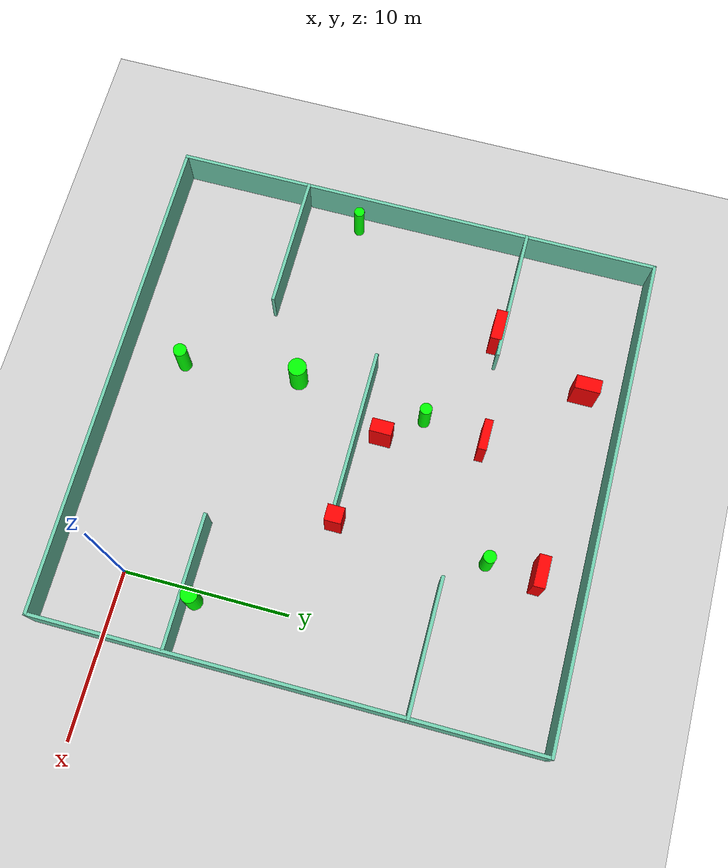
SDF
<sdf version="1.7">
 <world name="default">
  <light name="sun" type="directional">
   <pose>0 0 10 0 -0 0</pose>
   <diffuse>0.8 0.8 0.8 1</diffuse>
   <specular>0.2 0.2 0.2 1</specular>
   <attenuation>
    <range>1000</range>
    <constant>0.9</constant>
    <linear>0.01</linear>
    <quadratic>0.001</quadratic>
   </attenuation>
   <direction>-0.5 0.1 -0.9</direction>
   <spot><inner_angle>0</inner_angle><outer_angle>0</outer_angle><falloff>0</falloff></spot>
  </light>
  <model name="ground_plane">
   <static>1</static>
   <link name="link">
    <collision name="collision">
     <geometry><plane><normal>0 0 1</normal><size>100 100</size></plane></geometry>
     <surface>
      <contact><collide_bitmask>65535</collide_bitmask></contact>
      <friction><ode><mu>100</mu><mu2>50</mu2></ode></friction>
     </surface>
    </collision>
    <visual name="visual">
     <cast_shadows>0</cast_shadows>
     <geometry><plane><normal>0 0 1</normal><size>100 100</size></plane></geometry>
     <material>
      <script><uri>file://media/materials/scripts/gazebo.material</uri><name>Gazebo/Grey</name></script>
     </material>
    </visual>
   </link>
  </model>
  <gravity>0 0 -9.8</gravity>
  <magnetic_field>6e-06 2.3e-05 -4.2e-05</magnetic_field>
  <atmosphere type="adiabatic"/>
  <physics type="ode">
   <max_step_size>0.001</max_step_size>
   <real_time_factor>1</real_time_factor>
   <real_time_update_rate>1000</real_time_update_rate>
  </physics>
  <scene><ambient>0.4 0.4 0.4 1</ambient><background>0.7 0.7 0.7 1</background><shadows>1</shadows></scene>
  <spherical_coordinates>
   <surface_model>EARTH_WGS84</surface_model>
   <latitude_deg>0</latitude_deg>
   <longitude_deg>0</longitude_deg>
   <elevation>0</elevation>
   <heading_deg>0</heading_deg>
  </spherical_coordinates>
  <model name="my_base_walls">
   <link name="Wall_10">
    <collision name="Wall_10_Collision">
     <geometry><box><size>8.2 0.2 2.5</size></box></geometry>
     <pose>0 0 1.25 0 -0 0</pose>
    </collision>
    <visual name="Wall_10_Visual">
     <pose>0 0 1.25 0 -0 0</pose>
     <geometry><box><size>8.2 0.2 2.5</size></box></geometry>
     <material>
      <script><uri>file://media/materials/scripts/gazebo.material</uri><name>Gazebo/Grey</name></script>
      <ambient>0.435294 0.796078 0.67451 1</ambient>
     </material>
     <meta><layer>0</layer></meta>
    </visual>
    <pose>-11 -7 0 0 -0 0</pose>
   </link>
   <link name="Wall_12">
    <collision name="Wall_12_Collision">
     <geometry><box><size>8.2 0.2 2.5</size></box></geometry>
     <pose>0 0 1.25 0 -0 0</pose>
    </collision>
    <visual name="Wall_12_Visual">
     <pose>0 0 1.25 0 -0 0</pose>
     <geometry><box><size>8.2 0.2 2.5</size></box></geometry>
     <material>
      <script><uri>file://media/materials/scripts/gazebo.material</uri><name>Gazebo/Grey</name></script>
      <ambient>0.435294 0.796078 0.67451 1</ambient>
     </material>
     <meta><layer>0</layer></meta>
    </visual>
    <pose>-11 7 0 0 -0 0</pose>
   </link>
   <link name="Wall_14">
    <collision name="Wall_14_Collision">
     <geometry><box><size>8.2 0.2 2.5</size></box></geometry>
     <pose>0 0 1.25 0 -0 0</pose>
    </collision>
    <visual name="Wall_14_Visual">
     <pose>0 0 1.25 0 -0 0</pose>
     <geometry><box><size>8.2 0.2 2.5</size></box></geometry>
     <material>
      <script><uri>file://media/materials/scripts/gazebo.material</uri><name>Gazebo/Grey</name></script>
      <ambient>0.435294 0.796078 0.67451 1</ambient>
     </material>
     <meta><layer>0</layer></meta>
    </visual>
    <pose>11 7 0 0 -0 3.14159</pose>
   </link>
   <link name="Wall_16">
    <collision name="Wall_16_Collision">
     <geometry><box><size>10.2 0.2 2.5</size></box></geometry>
     <pose>0 0 1.25 0 -0 0</pose>
    </collision>
    <visual name="Wall_16_Visual">
     <pose>0 0 1.25 0 -0 0</pose>
     <geometry><box><size>10.2 0.2 2.5</size></box></geometry>
     <material>
      <script><uri>file://media/materials/scripts/gazebo.material</uri><name>Gazebo/Grey</name></script>
      <ambient>0.435294 0.796078 0.67451 1</ambient>
     </material>
     <meta><layer>0</layer></meta>
    </visual>
    <pose>0 0 0 0 -0 3.14159</pose>
   </link>
   <link name="Wall_2">
    <collision name="Wall_2_Collision">
     <geometry><box><size>30.2 0.2 2.5</size></box></geometry>
     <pose>0 0 1.25 0 -0 0</pose>
    </collision>
    <visual name="Wall_2_Visual">
     <pose>0 0 1.25 0 -0 0</pose>
     <geometry><box><size>30.2 0.2 2.5</size></box></geometry>
     <material>
      <script><uri>file://media/materials/scripts/gazebo.material</uri><name>Gazebo/Grey</name></script>
      <ambient>0.435294 0.796078 0.67451 1</ambient>
     </material>
     <meta><layer>0</layer></meta>
    </visual>
    <pose>0 -15 0 0 -0 3.14159</pose>
   </link>
   <link name="Wall_3">
    <collision name="Wall_3_Collision">
     <geometry><box><size>30.2 0.2 2.5</size></box></geometry>
     <pose>0 0 1.25 0 -0 0</pose>
    </collision>
    <visual name="Wall_3_Visual">
     <pose>0 0 1.25 0 -0 0</pose>
     <geometry><box><size>30.2 0.2 2.5</size></box></geometry>
     <material>
      <script><uri>file://media/materials/scripts/gazebo.material</uri><name>Gazebo/Grey</name></script>
      <ambient>0.435294 0.796078 0.67451 1</ambient>
     </material>
     <meta><layer>0</layer></meta>
    </visual>
    <pose>-15 0 0 0 -0 1.5708</pose>
   </link>
   <link name="Wall_4">
    <collision name="Wall_4_Collision">
     <geometry><box><size>30.2 0.2 2.5</size></box></geometry>
     <pose>0 0 1.25 0 -0 0</pose>
    </collision>
    <visual name="Wall_4_Visual">
     <pose>0 0 1.25 0 -0 0</pose>
     <geometry><box><size>30.2 0.2 2.5</size></box></geometry>
     <material>
      <script><uri>file://media/materials/scripts/gazebo.material</uri><name>Gazebo/Grey</name></script>
      <ambient>0.435294 0.796078 0.67451 1</ambient>
     </material>
     <meta><layer>0</layer></meta>
    </visual>
    <pose>0 15 0 0 -0 0</pose>
   </link>
   <link name="Wall_6">
    <collision name="Wall_6_Collision">
     <geometry><box><size>30.2 0.2 2.5</size></box></geometry>
     <pose>0 0 1.25 0 -0 0</pose>
    </collision>
    <visual name="Wall_6_Visual">
     <pose>0 0 1.25 0 -0 0</pose>
     <geometry><box><size>30.2 0.2 2.5</size></box></geometry>
     <material>
      <script><uri>file://media/materials/scripts/gazebo.material</uri><name>Gazebo/Grey</name></script>
      <ambient>0.435294 0.796078 0.67451 1</ambient>
     </material>
     <meta><layer>0</layer></meta>
    </visual>
    <pose>15 0 0 0 -0 1.5708</pose>
   </link>
   <link name="Wall_8">
    <collision name="Wall_8_Collision">
     <geometry><box><size>8.2 0.2 2.5</size></box></geometry>
     <pose>0 0 1.25 0 -0 0</pose>
    </collision>
    <visual name="Wall_8_Visual">
     <pose>0 0 1.25 0 -0 0</pose>
     <geometry><box><size>8.2 0.2 2.5</size></box></geometry>
     <material>
      <script><uri>file://media/materials/scripts/gazebo.material</uri><name>Gazebo/Grey</name></script>
      <ambient>0.435294 0.796078 0.67451 1</ambient>
     </material>
     <meta><layer>0</layer></meta>
    </visual>
    <pose>11 -7 0 0 -0 3.14159</pose>
   </link>
   <static>1</static>
   <pose>-11 11 0 0 -0 0</pose>
  </model>
  <model name="cylinder1">
   <static>1</static>
   <link name="link">
    <inertial>
     <mass>1</mass>
     <inertia><ixx>0.5</ixx><ixy>0</ixy><ixz>0</ixz><iyy>0.5</iyy><iyz>0</iyz><izz>1</izz></inertia>
    </inertial>
    <collision name="collision">
     <geometry><cylinder><radius>0.40797759821460516</radius><length>2.5</length></cylinder></geometry>
    </collision>
    <visual name="visual">
     <geometry><cylinder><radius>0.40797759821460516</radius><length>2.5</length></cylinder></geometry>
     <material>
      <ambient>0 1 0 1</ambient>
      <diffuse>0 1 0 1</diffuse>
      <specular>0.1 0.1 0.1 1</specular>
      <emissive>0 0 0 0</emissive>
     </material>
    </visual>
   </link>
   <pose>-13.281983471296718 -0.46024483709131836 1.25 0 0 0</pose>
  </model>
  <model name="cylinder2">
   <static>1</static>
   <link name="link">
    <inertial>
     <mass>1</mass>
     <inertia><ixx>0.5</ixx><ixy>0</ixy><ixz>0</ixz><iyy>0.5</iyy><iyz>0</iyz><izz>1</izz></inertia>
    </inertial>
    <collision name="collision">
     <geometry><cylinder><radius>0.3849896985136647</radius><length>2.5</length></cylinder></geometry>
    </collision>
    <visual name="visual">
     <geometry><cylinder><radius>0.3849896985136647</radius><length>2.5</length></cylinder></geometry>
     <material>
      <ambient>0 1 0 1</ambient>
      <diffuse>0 1 0 1</diffuse>
      <specular>0.1 0.1 0.1 1</specular>
      <emissive>0 0 0 0</emissive>
     </material>
    </visual>
   </link>
   <pose>-5.826302166993608 20.292171278843306 1.25 0 0 0</pose>
  </model>
  <model name="cylinder3">
   <static>1</static>
   <link name="link">
    <inertial>
     <mass>1</mass>
     <inertia><ixx>0.5</ixx><ixy>0</ixy><ixz>0</ixz><iyy>0.5</iyy><iyz>0</iyz><izz>1</izz></inertia>
    </inertial>
    <collision name="collision">
     <geometry><cylinder><radius>0.3173763414791086</radius><length>2.5</length></cylinder></geometry>
    </collision>
    <visual name="visual">
     <geometry><cylinder><radius>0.3173763414791086</radius><length>2.5</length></cylinder></geometry>
     <material>
      <ambient>0 1 0 1</ambient>
      <diffuse>0 1 0 1</diffuse>
      <specular>0.1 0.1 0.1 1</specular>
      <emissive>0 0 0 0</emissive>
     </material>
    </visual>
   </link>
   <pose>-25.002930637846163 7.544242370210714 1.25 0 0 0</pose>
  </model>
  <model name="cylinder4">
   <static>1</static>
   <link name="link">
    <inertial>
     <mass>1</mass>
     <inertia><ixx>0.5</ixx><ixy>0</ixy><ixz>0</ixz><iyy>0.5</iyy><iyz>0</iyz><izz>1</izz></inertia>
    </inertial>
    <collision name="collision">
     <geometry><cylinder><radius>0.36558127025936005</radius><length>2.5</length></cylinder></geometry>
    </collision>
    <visual name="visual">
     <geometry><cylinder><radius>0.36558127025936005</radius><length>2.5</length></cylinder></geometry>
     <material>
      <ambient>0 1 0 1</ambient>
      <diffuse>0 1 0 1</diffuse>
      <specular>0.1 0.1 0.1 1</specular>
      <emissive>0 0 0 0</emissive>
     </material>
    </visual>
   </link>
   <pose>-13.474707724630656 14.680669067904493 1.25 0 0 0</pose>
  </model>
  <model name="cylinder5">
   <static>1</static>
   <link name="link">
    <inertial>
     <mass>1</mass>
     <inertia><ixx>0.5</ixx><ixy>0</ixy><ixz>0</ixz><iyy>0.5</iyy><iyz>0</iyz><izz>1</izz></inertia>
    </inertial>
    <collision name="collision">
     <geometry><cylinder><radius>0.559201778427381</radius><length>2.5</length></cylinder></geometry>
    </collision>
    <visual name="visual">
     <geometry><cylinder><radius>0.559201778427381</radius><length>2.5</length></cylinder></geometry>
     <material>
      <ambient>0 1 0 1</ambient>
      <diffuse>0 1 0 1</diffuse>
      <specular>0.1 0.1 0.1 1</specular>
      <emissive>0 0 0 0</emissive>
     </material>
    </visual>
   </link>
   <pose>-14.051852742975424 6.626876431683385 1.25 0 0 0</pose>
  </model>
  <model name="cylinder6">
   <static>1</static>
   <link name="link">
    <inertial>
     <mass>1</mass>
     <inertia><ixx>0.5</ixx><ixy>0</ixy><ixz>0</ixz><iyy>0.5</iyy><iyz>0</iyz><izz>1</izz></inertia>
    </inertial>
    <collision name="collision">
     <geometry><cylinder><radius>0.4961394427744834</radius><length>2.5</length></cylinder></geometry>
    </collision>
    <visual name="visual">
     <geometry><cylinder><radius>0.4961394427744834</radius><length>2.5</length></cylinder></geometry>
     <material>
      <ambient>0 1 0 1</ambient>
      <diffuse>0 1 0 1</diffuse>
      <specular>0.1 0.1 0.1 1</specular>
      <emissive>0 0 0 0</emissive>
     </material>
    </visual>
   </link>
   <pose>0.6340667202628438 4.495314759752613 1.25 0 0 0</pose>
  </model>
  <model name="box1">
   <static>1</static>
   <link name="link">
    <inertial>
     <mass>1</mass>
     <inertia><ixx>0.083</ixx><ixy>0</ixy><ixz>0</ixz><iyy>0.083</iyy><iyz>0</iyz><izz>0.083</izz></inertia>
    </inertial>
    <collision name="collision">
     <geometry><box><size>1.9099716099859452 0.5053411854019196 2.5</size></box></geometry>
    </collision>
    <visual name="visual">
     <geometry><box><size>1.9099716099859452 0.5053411854019196 2.5</size></box></geometry>
     <material>
      <ambient>1 0 0 1</ambient>
      <diffuse>1 0 0 1</diffuse>
      <specular>0.1 0.1 0.1 1</specular>
      <emissive>0 0 0 0</emissive>
     </material>
    </visual>
    <sensor name="my_contact" type="contact">
     <contact><collision>box_collision</collision><topic>__default_topic__</topic></contact>
    </sensor>
   </link>
   <pose>-12.849423964288913 18.433466123137883 1.25 0 0 0</pose>
  </model>
  <model name="box2">
   <static>1</static>
   <link name="link">
    <inertial>
     <mass>1</mass>
     <inertia><ixx>0.083</ixx><ixy>0</ixy><ixz>0</ixz><iyy>0.083</iyy><iyz>0</iyz><izz>0.083</izz></inertia>
    </inertial>
    <collision name="collision">
     <geometry><box><size>1.9063331631420868 0.6819486011734246 2.5</size></box></geometry>
    </collision>
    <visual name="visual">
     <geometry><box><size>1.9063331631420868 0.6819486011734246 2.5</size></box></geometry>
     <material>
      <ambient>1 0 0 1</ambient>
      <diffuse>1 0 0 1</diffuse>
      <specular>0.1 0.1 0.1 1</specular>
      <emissive>0 0 0 0</emissive>
     </material>
    </visual>
    <sensor name="my_contact" type="contact">
     <contact><collision>box_collision</collision><topic>__default_topic__</topic></contact>
    </sensor>
   </link>
   <pose>-19.83272720677346 17.659224174003633 1.25 0 0 0</pose>
  </model>
  <model name="box3">
   <static>1</static>
   <link name="link">
    <inertial>
     <mass>1</mass>
     <inertia><ixx>0.083</ixx><ixy>0</ixy><ixz>0</ixz><iyy>0.083</iyy><iyz>0</iyz><izz>0.083</izz></inertia>
    </inertial>
    <collision name="collision">
     <geometry><box><size>0.8367814921526198 1.5503837667507636 2.5</size></box></geometry>
    </collision>
    <visual name="visual">
     <geometry><box><size>0.8367814921526198 1.5503837667507636 2.5</size></box></geometry>
     <material>
      <ambient>1 0 0 1</ambient>
      <diffuse>1 0 0 1</diffuse>
      <specular>0.1 0.1 0.1 1</specular>
      <emissive>0 0 0 0</emissive>
     </material>
    </visual>
    <sensor name="my_contact" type="contact">
     <contact><collision>box_collision</collision><topic>__default_topic__</topic></contact>
    </sensor>
   </link>
   <pose>-17.476213967313193 23.617537693149455 1.25 0 0 0</pose>
  </model>
  <model name="box4">
   <static>1</static>
   <link name="link">
    <inertial>
     <mass>1</mass>
     <inertia><ixx>0.083</ixx><ixy>0</ixy><ixz>0</ixz><iyy>0.083</iyy><iyz>0</iyz><izz>0.083</izz></inertia>
    </inertial>
    <collision name="collision">
     <geometry><box><size>0.9891099665858851 1.0238494438304846 2.5</size></box></geometry>
    </collision>
    <visual name="visual">
     <geometry><box><size>0.9891099665858851 1.0238494438304846 2.5</size></box></geometry>
     <material>
      <ambient>1 0 0 1</ambient>
      <diffuse>1 0 0 1</diffuse>
      <specular>0.1 0.1 0.1 1</specular>
      <emissive>0 0 0 0</emissive>
     </material>
    </visual>
    <sensor name="my_contact" type="contact">
     <contact><collision>box_collision</collision><topic>__default_topic__</topic></contact>
    </sensor>
   </link>
   <pose>-5.954426330973867 11.138662839925676 1.25 0 0 0</pose>
  </model>
  <model name="box5">
   <static>1</static>
   <link name="link">
    <inertial>
     <mass>1</mass>
     <inertia><ixx>0.083</ixx><ixy>0</ixy><ixz>0</ixz><iyy>0.083</iyy><iyz>0</iyz><izz>0.083</izz></inertia>
    </inertial>
    <collision name="collision">
     <geometry><box><size>0.8140669636451602 1.330315376409606 2.5</size></box></geometry>
    </collision>
    <visual name="visual">
     <geometry><box><size>0.8140669636451602 1.330315376409606 2.5</size></box></geometry>
     <material>
      <ambient>1 0 0 1</ambient>
      <diffuse>1 0 0 1</diffuse>
      <specular>0.1 0.1 0.1 1</specular>
      <emissive>0 0 0 0</emissive>
     </material>
    </visual>
    <sensor name="my_contact" type="contact">
     <contact><collision>box_collision</collision><topic>__default_topic__</topic></contact>
    </sensor>
   </link>
   <pose>-11.732183202247242 12.438087494715997 1.25 0 0 0</pose>
  </model>
  <model name="box6">
   <static>1</static>
   <link name="link">
    <inertial>
     <mass>1</mass>
     <inertia><ixx>0.083</ixx><ixy>0</ixy><ixz>0</ixz><iyy>0.083</iyy><iyz>0</iyz><izz>0.083</izz></inertia>
    </inertial>
    <collision name="collision">
     <geometry><box><size>1.910260508214279 0.7048989184528531 2.5</size></box></geometry>
    </collision>
    <visual name="visual">
     <geometry><box><size>1.910260508214279 0.7048989184528531 2.5</size></box></geometry>
     <material>
      <ambient>1 0 0 1</ambient>
      <diffuse>1 0 0 1</diffuse>
      <specular>0.1 0.1 0.1 1</specular>
      <emissive>0 0 0 0</emissive>
     </material>
    </visual>
    <sensor name="my_contact" type="contact">
     <contact><collision>box_collision</collision><topic>__default_topic__</topic></contact>
    </sensor>
   </link>
   <pose>-5.785616762505654 23.341998459795665 1.25 0 0 0</pose>
  </model>
 </world>
</sdf>
